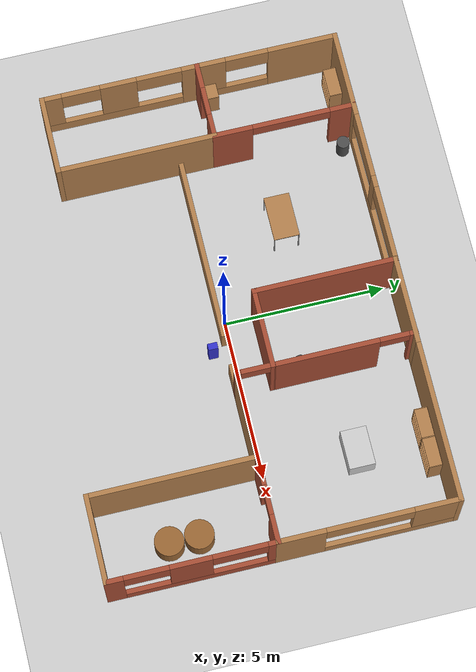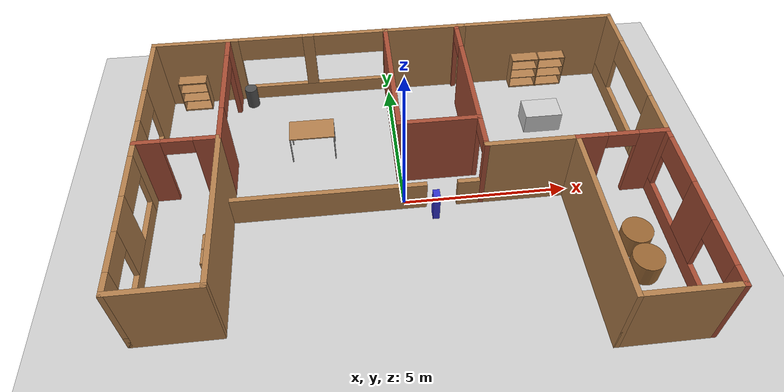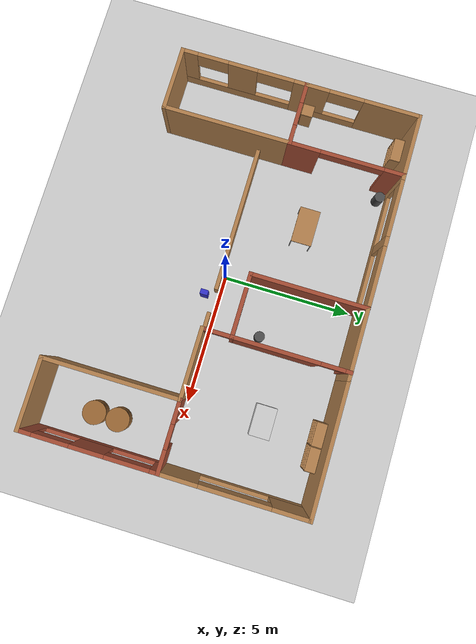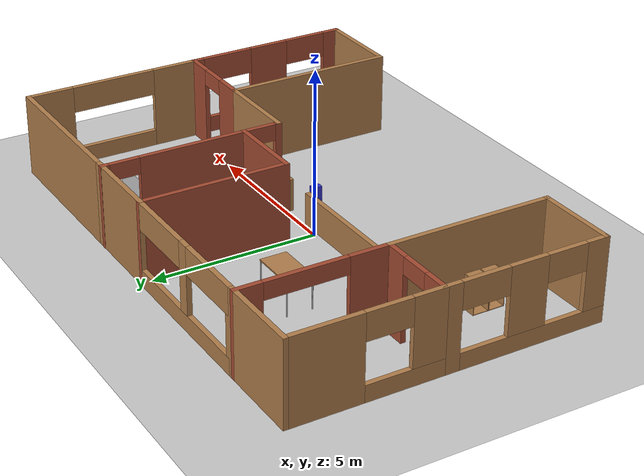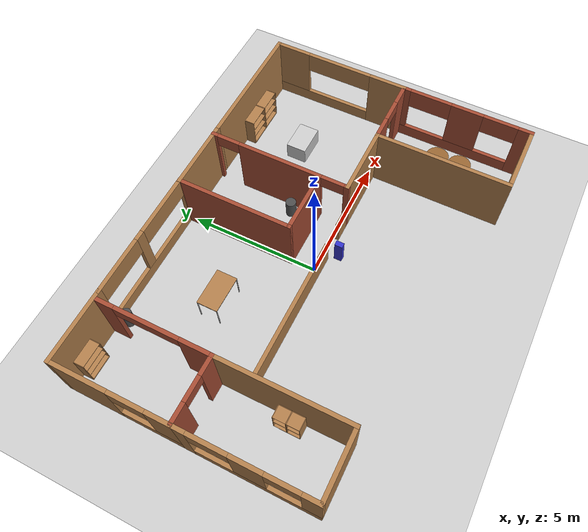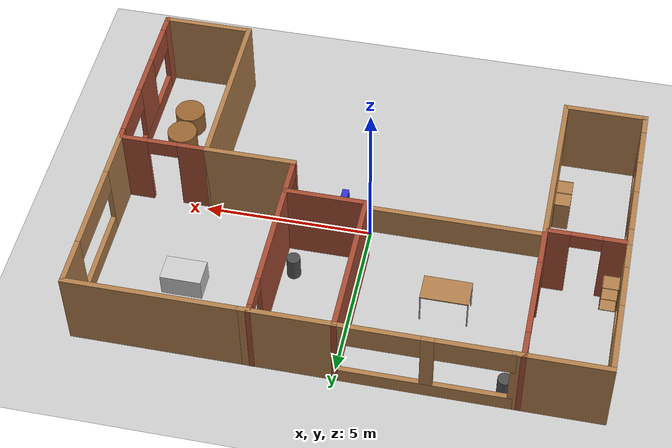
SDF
<?xml version="1.0"?>
<sdf version="1.8">
  <world name="default">
    <scene>
      <shadows>0</shadows>
    </scene>

    <gui fullscreen='0'>
      <camera name='user_camera'>
        <pose frame=''>0.319654 -0.235002 9.29441 0 1.5138 0.009599</pose>
        <view_controller>orbit</view_controller>
        <projection_type>perspective</projection_type>
      </camera>
    </gui>

    <physics type="ode">
      <real_time_update_rate>1000.0</real_time_update_rate>
      <max_step_size>0.001</max_step_size>
      <real_time_factor>1</real_time_factor>
      <ode>
        <solver>
          <type>quick</type>
          <iters>150</iters>
          <precon_iters>0</precon_iters>
          <sor>1.400000</sor>
          <use_dynamic_moi_rescaling>1</use_dynamic_moi_rescaling>
        </solver>
        <constraints>
          <cfm>0.00001</cfm>
          <erp>0.2</erp>
          <contact_max_correcting_vel>2000.000000</contact_max_correcting_vel>
          <contact_surface_layer>0.01000</contact_surface_layer>
        </constraints>
      </ode>
    </physics>
    <plugin
      filename="gz-sim-physics-system"
      name="gz::sim::systems::Physics">
    </plugin>
    <plugin
      filename="gz-sim-user-commands-system"
      name="gz::sim::systems::UserCommands">
    </plugin>
    <plugin
      filename="gz-sim-scene-broadcaster-system"
      name="gz::sim::systems::SceneBroadcaster">
    </plugin>
    <plugin
      filename="gz-sim-sensors-system"
      name="gz::sim::systems::Sensors">
      <render_engine>ogre2</render_engine>
    </plugin>
    <plugin
      filename="gz-sim-imu-system"
      name="gz::sim::systems::Imu">
    </plugin>

    <include>
      <uri>https://fuel.gazebosim.org/1.0/OpenRobotics/models/Ground Plane</uri>
    </include>

    <include>
      <uri>https://fuel.gazebosim.org/1.0/OpenRobotics/models/Sun</uri>
    </include>

    <model name="turtlebot3_house">
      <static>1</static>
      <include>
        <uri>model://turtlebot3_house</uri>
      </include>
    </model>

  </world>
</sdf>
